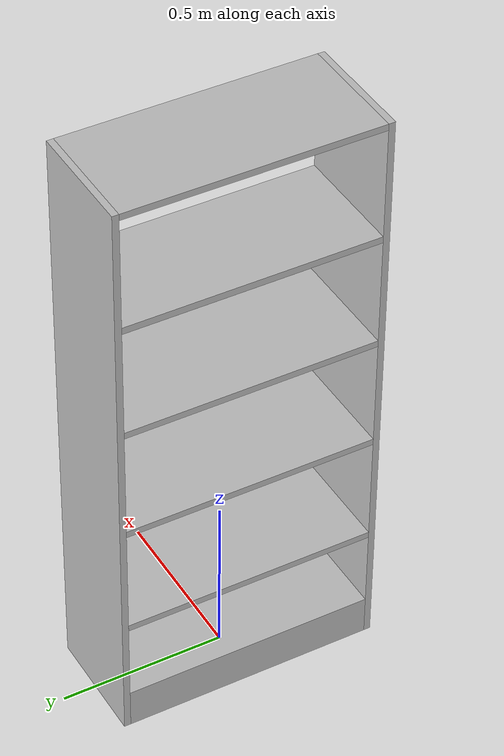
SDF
<?xml version="1.0"?>
<sdf version="1.6">
  <model name="rwc2016/bookcase_noback">
    <link name="1_link">
      <collision name="1_col">
        <geometry>
          <box>
            <size>0.35 0.02 1.798</size>
          </box>
        </geometry>
      </collision>
      <visual name="1_vis">
        <geometry>
          <box>
            <size>0.35 0.02 1.798</size>
          </box>
        </geometry>
        <material>
          <ambient>0.75 0.75 0.75 1</ambient>
        </material>
      </visual>
      <pose>0 -0.39 0.899 0 0 0</pose>
    </link>
    <link name="2_link">
      <collision name="2_col">
        <geometry>
          <box>
            <size>0.35 0.02 1.798</size>
          </box>
        </geometry>
      </collision>
      <visual name="2_vis">
        <geometry>
          <box>
            <size>0.35 0.02 1.798</size>
          </box>
        </geometry>
        <material>
          <ambient>0.75 0.75 0.75 1</ambient>
        </material>
      </visual>
      <pose>0 0.39 0.899 0 0 0</pose>
    </link>
    <link name="3_link">
      <collision name="3_col">
        <geometry>
          <box>
            <size>0.35 0.76 0.02</size>
          </box>
        </geometry>
      </collision>
      <visual name="3_vis">
        <geometry>
          <box>
            <size>0.35 0.76 0.02</size>
          </box>
        </geometry>
        <material>
          <ambient>0.75 0.75 0.75 1</ambient>
        </material>
      </visual>
      <pose>0 0 1.788 0 0 0</pose>
    </link>
    <link name="4_link">
      <collision name="4_col">
        <geometry>
          <box>
            <size>0.35 0.76 0.125</size>
          </box>
        </geometry>
      </collision>
      <visual name="4_vis">
        <geometry>
          <box>
            <size>0.35 0.76 0.125</size>
          </box>
        </geometry>
        <material>
          <ambient>0.75 0.75 0.75 1</ambient>
        </material>
      </visual>
      <pose>0 0 0.0625 0 0 0</pose>
    </link>
    <link name="5_link">
      <collision name="5_col">
        <geometry>
          <box>
            <size>0.35 0.76 0.02</size>
          </box>
        </geometry>
      </collision>
      <visual name="5_vis">
        <geometry>
          <box>
            <size>0.35 0.76 0.02</size>
          </box>
        </geometry>
        <material>
          <ambient>0.75 0.75 0.75 1</ambient>
        </material>
      </visual>
      <pose>0 0 0.38 0 0 0</pose>
    </link>
    <link name="6_link">
      <collision name="6_col">
        <geometry>
          <box>
            <size>0.35 0.76 0.02</size>
          </box>
        </geometry>
      </collision>
      <visual name="6_vis">
        <geometry>
          <box>
            <size>0.35 0.76 0.02</size>
          </box>
        </geometry>
        <material>
          <ambient>0.75 0.75 0.75 1</ambient>
        </material>
      </visual>
      <pose>0 0 0.731 0 0 0</pose>
    </link>
    <link name="7_link">
      <collision name="7_col">
        <geometry>
          <box>
            <size>0.35 0.76 0.02</size>
          </box>
        </geometry>
      </collision>
      <visual name="7_vis">
        <geometry>
          <box>
            <size>0.35 0.76 0.02</size>
          </box>
        </geometry>
        <material>
          <ambient>0.75 0.75 0.75 1</ambient>
        </material>
      </visual>
      <pose>0 0 1.081 0 0 0</pose>
    </link>
    <link name="8_link">
      <collision name="8_col">
        <geometry>
          <box>
            <size>0.35 0.76 0.02</size>
          </box>
        </geometry>
      </collision>
      <visual name="8_vis">
        <geometry>
          <box>
            <size>0.35 0.76 0.02</size>
          </box>
        </geometry>
        <material>
          <ambient>0.75 0.75 0.75 1</ambient>
        </material>
      </visual>
      <pose>0 0 1.431 0 0 0</pose>
    </link>
    <link name="in_front_of">
      <virtual_volume name="in_front_of_vv">
        <geometry>
          <box>
            <size>0.2 0.2 0.01</size>
          </box>
        </geometry>
        <pose>0.675 0.0 0.005 0 0 0</pose>
      </virtual_volume>
    </link>
    <link name="shelf1">
      <virtual_volume name="shelf1_vv">
        <geometry>
          <box>
            <size>0.27 0.7 0.174</size>
          </box>
        </geometry>
        <pose>0.01 0.0 0.232 0 0 0</pose>
      </virtual_volume>
    </link>
    <link name="shelf2">
      <virtual_volume name="shelf2_vv">
        <geometry>
          <box>
            <size>0.27 0.7 0.258</size>
          </box>
        </geometry>
        <pose>0.01 0.0 0.539 0 0 0</pose>
      </virtual_volume>
    </link>
    <link name="shelf3">
      <virtual_volume name="shelf3_vv">
        <geometry>
          <box>
            <size>0.27 0.7 0.255</size>
          </box>
        </geometry>
        <pose>0.01 0.0 0.8875 0 0 0</pose>
      </virtual_volume>
    </link>
    <link name="shelf4">
      <virtual_volume name="shelf4_vv">
        <geometry>
          <box>
            <size>0.27 0.7 0.247</size>
          </box>
        </geometry>
        <pose>0.01 0.0 1.2335 0 0 0</pose>
      </virtual_volume>
    </link>
    <link name="shelf5">
      <virtual_volume name="shelf5_vv">
        <geometry>
          <box>
            <size>0.27 0.7 0.242</size>
          </box>
        </geometry>
        <pose>0.01 0.0 1.582 0 0 0</pose>
      </virtual_volume>
    </link>
    <static>true</static>
  </model>
</sdf>
